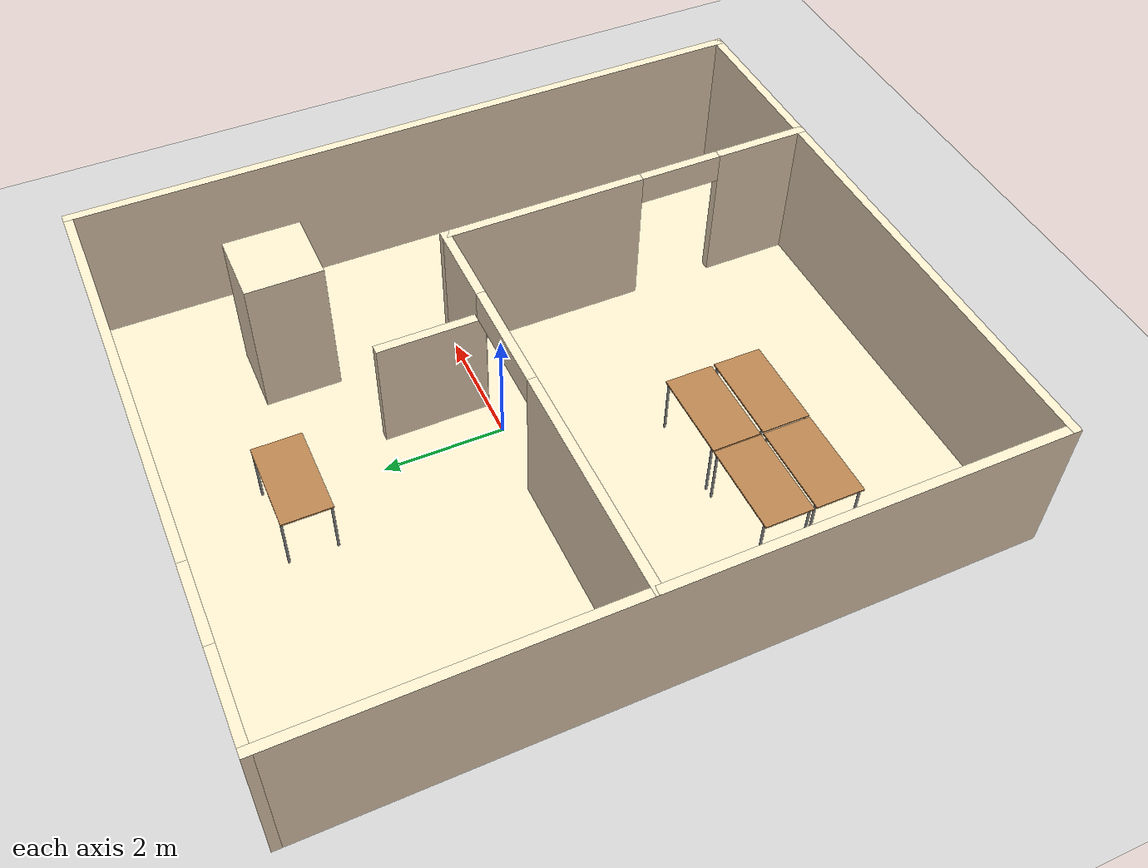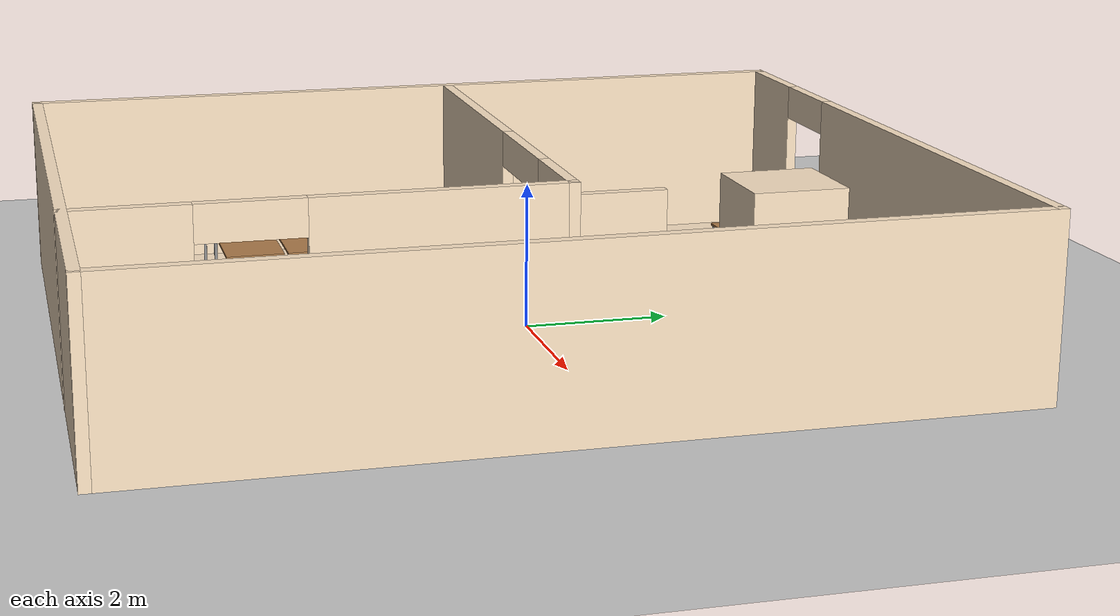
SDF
<sdf version="1.7">
 <world name="default">
  <light name="sun" type="directional">
   <pose>0 0 10 0 -0 0</pose>
   <diffuse>0.8 0.8 0.8 1</diffuse>
   <specular>0.2 0.2 0.2 1</specular>
   <attenuation>
    <range>1000</range>
    <constant>0.9</constant>
    <linear>0.01</linear>
    <quadratic>0.001</quadratic>
   </attenuation>
   <direction>-0.5 0.1 -0.9</direction>
   <spot><inner_angle>0</inner_angle><outer_angle>0</outer_angle><falloff>0</falloff></spot>
  </light>
  <model name="ground_plane">
   <static>1</static>
   <link name="link">
    <collision name="collision">
     <geometry><plane><normal>0 0 1</normal><size>100 100</size></plane></geometry>
     <surface>
      <contact><collide_bitmask>65535</collide_bitmask></contact>
      <friction><ode><mu>100</mu><mu2>50</mu2></ode></friction>
     </surface>
    </collision>
    <visual name="visual">
     <cast_shadows>0</cast_shadows>
     <geometry><plane><normal>0 0 1</normal><size>100 100</size></plane></geometry>
     <material>
      <script><uri>file://media/materials/scripts/gazebo.material</uri><name>Gazebo/Grey</name></script>
     </material>
    </visual>
   </link>
  </model>
  <gravity>0 0 -9.8</gravity>
  <magnetic_field>6e-06 2.3e-05 -4.2e-05</magnetic_field>
  <atmosphere type="adiabatic"/>
  <physics type="ode">
   <max_step_size>0.001</max_step_size>
   <real_time_factor>1</real_time_factor>
   <real_time_update_rate>1000</real_time_update_rate>
  </physics>
  <scene><ambient>0.4 0.4 0.4 1</ambient><background>0.7 0.7 0.7 1</background><shadows>1</shadows></scene>
  <audio><device>default</device></audio>
  <spherical_coordinates>
   <surface_model>EARTH_WGS84</surface_model>
   <latitude_deg>0</latitude_deg>
   <longitude_deg>0</longitude_deg>
   <elevation>0</elevation>
   <heading_deg>0</heading_deg>
  </spherical_coordinates>
  <model name="wall">
   <pose>-0.13336 -0.499026 0 0 -0 0</pose>
   <link name="floor">
    <collision name="floor_collision">
     <geometry><box><size>10 11.75 0.001</size></box></geometry>
     <pose>0 0.002085 0 0 -0 0</pose>
    </collision>
    <visual name="floor_visual">
     <geometry><box><size>10 11.75 0.001</size></box></geometry>
     <material>
      <script><uri>file://media/materials/scripts/gazebo.material</uri><name>Gazebo/Grey</name></script>
      <ambient>1 0.901961 0.780392 1</ambient>
     </material>
     <pose>0 0.002085 0 0 -0 0</pose>
    </visual>
   </link>
   <link name="Wall_11">
    <collision name="Wall_11_Collision">
     <geometry><box><size>11.75 0.15 2.5</size></box></geometry>
     <pose>0 0 1.25 0 -0 0</pose>
    </collision>
    <visual name="Wall_11_Visual">
     <pose>0 0 1.25 0 -0 0</pose>
     <geometry><box><size>11.75 0.15 2.5</size></box></geometry>
     <material>
      <script><uri>file://media/materials/scripts/gazebo.material</uri><name>Gazebo/Grey</name></script>
      <ambient>1 0.901961 0.780392 1</ambient>
     </material>
     <meta><layer>0</layer></meta>
    </visual>
    <pose>-4.9383 0.002085 0 0 -0 -1.5708</pose>
   </link>
   <link name="Wall_13">
    <collision name="Wall_13_Collision">
     <geometry><box><size>11.75 0.15 2.5</size></box></geometry>
     <pose>0 0 1.25 0 -0 0</pose>
    </collision>
    <visual name="Wall_13_Visual">
     <pose>0 0 1.25 0 -0 0</pose>
     <geometry><box><size>11.75 0.15 2.5</size></box></geometry>
     <material>
      <script><uri>file://media/materials/scripts/gazebo.material</uri><name>Gazebo/Grey</name></script>
      <ambient>1 0.901961 0.780392 1</ambient>
     </material>
     <meta><layer>0</layer></meta>
    </visual>
    <pose>4.9383 0.002085 0 0 -0 -1.5708</pose>
   </link>
   <link name="Wall_17">
    <collision name="Wall_17_Collision">
     <geometry><box><size>10.0266 0.15 2.5</size></box></geometry>
     <pose>0 0 1.25 0 -0 0</pose>
    </collision>
    <visual name="Wall_17_Visual">
     <pose>0 0 1.25 0 -0 0</pose>
     <geometry><box><size>10.0266 0.15 2.5</size></box></geometry>
     <material>
      <script><uri>file://media/materials/scripts/gazebo.material</uri><name>Gazebo/Grey</name></script>
      <ambient>1 0.901961 0.780392 1</ambient>
     </material>
     <meta><layer>0</layer></meta>
    </visual>
    <pose>0 -5.79791 0 0 -0 0</pose>
   </link>
   <link name="Wall_25">
    <pose>2.1642 -2.62709 0 0 -0 1.5708</pose>
    <visual name="Wall_25_Visual_0">
     <pose>-2.43405 0 1.25 0 -0 0</pose>
     <geometry><box><size>1.63191 0.15 2.5</size></box></geometry>
     <material>
      <script><uri>file://media/materials/scripts/gazebo.material</uri><name>Gazebo/Grey</name></script>
      <ambient>1 0.901961 0.780392 1</ambient>
     </material>
     <meta><layer>0</layer></meta>
    </visual>
    <collision name="Wall_25_Collision_0">
     <geometry><box><size>1.63191 0.15 2.5</size></box></geometry>
     <pose>-2.43405 0 1.25 0 -0 0</pose>
    </collision>
    <visual name="Wall_25_Visual_1">
     <pose>1.5188 0 1.25 0 -0 0</pose>
     <geometry><box><size>3.4624 0.15 2.5</size></box></geometry>
     <material>
      <script><uri>file://media/materials/scripts/gazebo.material</uri><name>Gazebo/Grey</name></script>
      <ambient>1 0.901961 0.780392 1</ambient>
     </material>
     <meta><layer>0</layer></meta>
    </visual>
    <collision name="Wall_25_Collision_1">
     <geometry><box><size>3.4624 0.15 2.5</size></box></geometry>
     <pose>1.5188 0 1.25 0 -0 0</pose>
    </collision>
    <visual name="Wall_25_Visual_2">
     <pose>-0.915247 0 2.25 0 -0 0</pose>
     <geometry><box><size>1.40569 0.15 0.5</size></box></geometry>
     <material>
      <script><uri>file://media/materials/scripts/gazebo.material</uri><name>Gazebo/Grey</name></script>
      <ambient>1 0.901961 0.780392 1</ambient>
     </material>
     <meta><layer>0</layer></meta>
    </visual>
    <collision name="Wall_25_Collision_2">
     <geometry><box><size>1.40569 0.15 0.5</size></box></geometry>
     <pose>-0.915247 0 2.25 0 -0 0</pose>
    </collision>
   </link>
   <link name="Wall_26">
    <pose>-1.3858 0.547915 0 0 -0 3.14159</pose>
    <visual name="Wall_26_Visual_0">
     <pose>-2.88936 0 1.25 0 -0 0</pose>
     <geometry><box><size>1.47128 0.15 2.5</size></box></geometry>
     <material>
      <script><uri>file://media/materials/scripts/gazebo.material</uri><name>Gazebo/Grey</name></script>
      <ambient>1 0.901961 0.780392 1</ambient>
     </material>
     <meta><layer>0</layer></meta>
    </visual>
    <collision name="Wall_26_Collision_0">
     <geometry><box><size>1.47128 0.15 2.5</size></box></geometry>
     <pose>-2.88936 0 1.25 0 -0 0</pose>
    </collision>
    <visual name="Wall_26_Visual_1">
     <pose>1.67111 0 1.25 0 -0 0</pose>
     <geometry><box><size>3.90779 0.15 2.5</size></box></geometry>
     <material>
      <script><uri>file://media/materials/scripts/gazebo.material</uri><name>Gazebo/Grey</name></script>
      <ambient>1 0.901961 0.780392 1</ambient>
     </material>
     <meta><layer>0</layer></meta>
    </visual>
    <collision name="Wall_26_Collision_1">
     <geometry><box><size>3.90779 0.15 2.5</size></box></geometry>
     <pose>1.67111 0 1.25 0 -0 0</pose>
    </collision>
    <visual name="Wall_26_Visual_2">
     <pose>-1.21826 0 2.25 0 -0 0</pose>
     <geometry><box><size>1.87093 0.15 0.5</size></box></geometry>
     <material>
      <script><uri>file://media/materials/scripts/gazebo.material</uri><name>Gazebo/Grey</name></script>
      <ambient>1 0.901961 0.780392 1</ambient>
     </material>
     <meta><layer>0</layer></meta>
    </visual>
    <collision name="Wall_26_Collision_2">
     <geometry><box><size>1.87093 0.15 0.5</size></box></geometry>
     <pose>-1.21826 0 2.25 0 -0 0</pose>
    </collision>
   </link>
   <link name="Wall_28">
    <collision name="Wall_28_Collision">
     <geometry><box><size>1.75 0.15 2</size></box></geometry>
     <pose>0 0 1 0 -0 0</pose>
    </collision>
    <visual name="Wall_28_Visual">
     <pose>0 0 1 0 -0 0</pose>
     <geometry><box><size>1.75 0.15 2</size></box></geometry>
     <material>
      <script><uri>file://media/materials/scripts/gazebo.material</uri><name>Gazebo/Grey</name></script>
      <ambient>1 0.901961 0.780392 1</ambient>
     </material>
     <meta><layer>0</layer></meta>
    </visual>
    <pose>0.773042 1.3838 0 0 -0 1.5708</pose>
   </link>
   <link name="Wall_32">
    <collision name="Wall_32_Collision">
     <geometry><box><size>1.25 1.2 2.5</size></box></geometry>
     <pose>0 0 1.25 0 -0 0</pose>
    </collision>
    <visual name="Wall_32_Visual">
     <pose>0 0 1.25 0 -0 0</pose>
     <geometry><box><size>1.25 1.2 2.5</size></box></geometry>
     <material>
      <script><uri>file://media/materials/scripts/gazebo.material</uri><name>Gazebo/Grey</name></script>
      <ambient>1 0.901961 0.780392 1</ambient>
     </material>
     <meta><layer>0</layer></meta>
    </visual>
    <pose>2.76597 3.13644 0 0 -0 -1.5708</pose>
   </link>
   <link name="Wall_9">
    <pose>0 5.80208 0 0 -0 0</pose>
    <visual name="Wall_9_Visual_0">
     <pose>-4.22153 0 1.25 0 -0 0</pose>
     <geometry><box><size>1.58354 0.15 2.5</size></box></geometry>
     <material>
      <script><uri>file://media/materials/scripts/gazebo.material</uri><name>Gazebo/Grey</name></script>
      <ambient>1 0.901961 0.780392 1</ambient>
     </material>
     <meta><layer>0</layer></meta>
    </visual>
    <collision name="Wall_9_Collision_0">
     <geometry><box><size>1.58354 0.15 2.5</size></box></geometry>
     <pose>-4.22153 0 1.25 0 -0 0</pose>
    </collision>
    <visual name="Wall_9_Visual_1">
     <pose>1.44405 0 1.25 0 -0 0</pose>
     <geometry><box><size>7.13851 0.15 2.5</size></box></geometry>
     <material>
      <script><uri>file://media/materials/scripts/gazebo.material</uri><name>Gazebo/Grey</name></script>
      <ambient>1 0.901961 0.780392 1</ambient>
     </material>
     <meta><layer>0</layer></meta>
    </visual>
    <collision name="Wall_9_Collision_1">
     <geometry><box><size>7.13851 0.15 2.5</size></box></geometry>
     <pose>1.44405 0 1.25 0 -0 0</pose>
    </collision>
    <visual name="Wall_9_Visual_2">
     <pose>-2.77748 0 2.25 0 -0 0</pose>
     <geometry><box><size>1.30456 0.15 0.5</size></box></geometry>
     <material>
      <script><uri>file://media/materials/scripts/gazebo.material</uri><name>Gazebo/Grey</name></script>
      <ambient>1 0.901961 0.780392 1</ambient>
     </material>
     <meta><layer>0</layer></meta>
    </visual>
    <collision name="Wall_9_Collision_2">
     <geometry><box><size>1.30456 0.15 0.5</size></box></geometry>
     <pose>-2.77748 0 2.25 0 -0 0</pose>
    </collision>
   </link>
   <static>1</static>
  </model>
  <model name="Table">
   <static>1</static>
   <link name="link">
    <collision name="surface">
     <pose>0 0 1 0 -0 0</pose>
     <geometry><box><size>1.5 0.8 0.03</size></box></geometry>
     <surface><friction><ode><mu>0.6</mu><mu2>0.6</mu2></ode></friction></surface>
    </collision>
    <visual name="visual1">
     <pose>0 0 1 0 -0 0</pose>
     <geometry><box><size>1.5 0.8 0.03</size></box></geometry>
     <material>
      <diffuse>1 1 1 1</diffuse>
      <script><uri>file://media/materials/scripts/gazebo.material</uri><name>Gazebo/Wood</name></script>
      <pbr><metal><albedo_map>model://Table/Table_Diffuse.jpg</albedo_map></metal></pbr>
     </material>
    </visual>
    <collision name="front_left_leg">
     <pose>0.68 0.38 0.5 0 -0 0</pose>
     <geometry><cylinder><radius>0.02</radius><length>1</length></cylinder></geometry>
    </collision>
    <visual name="front_left_leg">
     <pose>0.68 0.38 0.5 0 -0 0</pose>
     <geometry><cylinder><radius>0.02</radius><length>1</length></cylinder></geometry>
     <material>
      <diffuse>0.5 0.5 0.5 1</diffuse>
      <script><uri>file://media/materials/scripts/gazebo.material</uri><name>Gazebo/Grey</name></script>
     </material>
    </visual>
    <collision name="front_right_leg">
     <pose>0.68 -0.38 0.5 0 -0 0</pose>
     <geometry><cylinder><radius>0.02</radius><length>1</length></cylinder></geometry>
    </collision>
    <visual name="front_right_leg">
     <pose>0.68 -0.38 0.5 0 -0 0</pose>
     <geometry><cylinder><radius>0.02</radius><length>1</length></cylinder></geometry>
     <material>
      <diffuse>0.5 0.5 0.5 1</diffuse>
      <script><uri>file://media/materials/scripts/gazebo.material</uri><name>Gazebo/Grey</name></script>
     </material>
    </visual>
    <collision name="back_right_leg">
     <pose>-0.68 -0.38 0.5 0 -0 0</pose>
     <geometry><cylinder><radius>0.02</radius><length>1</length></cylinder></geometry>
    </collision>
    <visual name="back_right_leg">
     <pose>-0.68 -0.38 0.5 0 -0 0</pose>
     <geometry><cylinder><radius>0.02</radius><length>1</length></cylinder></geometry>
     <material>
      <diffuse>0.5 0.5 0.5 1</diffuse>
      <script><uri>file://media/materials/scripts/gazebo.material</uri><name>Gazebo/Grey</name></script>
     </material>
    </visual>
    <collision name="back_left_leg">
     <pose>-0.68 0.38 0.5 0 -0 0</pose>
     <geometry><cylinder><radius>0.02</radius><length>1</length></cylinder></geometry>
    </collision>
    <visual name="back_left_leg">
     <pose>-0.68 0.38 0.5 0 -0 0</pose>
     <geometry><cylinder><radius>0.02</radius><length>1</length></cylinder></geometry>
     <material>
      <diffuse>0.5 0.5 0.5 1</diffuse>
      <script><uri>file://media/materials/scripts/gazebo.material</uri><name>Gazebo/Grey</name></script>
     </material>
    </visual>
   </link>
   <pose>-3.19292 -2.74785 0 0 -0 0</pose>
  </model>
  <model name="Table_0">
   <static>1</static>
   <link name="link">
    <collision name="surface">
     <pose>0 0 1 0 -0 0</pose>
     <geometry><box><size>1.5 0.8 0.03</size></box></geometry>
     <surface><friction><ode><mu>0.6</mu><mu2>0.6</mu2></ode></friction></surface>
    </collision>
    <visual name="visual1">
     <pose>0 0 1 0 -0 0</pose>
     <geometry><box><size>1.5 0.8 0.03</size></box></geometry>
     <material>
      <diffuse>1 1 1 1</diffuse>
      <script><uri>file://media/materials/scripts/gazebo.material</uri><name>Gazebo/Wood</name></script>
      <pbr><metal><albedo_map>model://Table/Table_Diffuse.jpg</albedo_map></metal></pbr>
     </material>
    </visual>
    <collision name="front_left_leg">
     <pose>0.68 0.38 0.5 0 -0 0</pose>
     <geometry><cylinder><radius>0.02</radius><length>1</length></cylinder></geometry>
    </collision>
    <visual name="front_left_leg">
     <pose>0.68 0.38 0.5 0 -0 0</pose>
     <geometry><cylinder><radius>0.02</radius><length>1</length></cylinder></geometry>
     <material>
      <diffuse>0.5 0.5 0.5 1</diffuse>
      <script><uri>file://media/materials/scripts/gazebo.material</uri><name>Gazebo/Grey</name></script>
     </material>
    </visual>
    <collision name="front_right_leg">
     <pose>0.68 -0.38 0.5 0 -0 0</pose>
     <geometry><cylinder><radius>0.02</radius><length>1</length></cylinder></geometry>
    </collision>
    <visual name="front_right_leg">
     <pose>0.68 -0.38 0.5 0 -0 0</pose>
     <geometry><cylinder><radius>0.02</radius><length>1</length></cylinder></geometry>
     <material>
      <diffuse>0.5 0.5 0.5 1</diffuse>
      <script><uri>file://media/materials/scripts/gazebo.material</uri><name>Gazebo/Grey</name></script>
     </material>
    </visual>
    <collision name="back_right_leg">
     <pose>-0.68 -0.38 0.5 0 -0 0</pose>
     <geometry><cylinder><radius>0.02</radius><length>1</length></cylinder></geometry>
    </collision>
    <visual name="back_right_leg">
     <pose>-0.68 -0.38 0.5 0 -0 0</pose>
     <geometry><cylinder><radius>0.02</radius><length>1</length></cylinder></geometry>
     <material>
      <diffuse>0.5 0.5 0.5 1</diffuse>
      <script><uri>file://media/materials/scripts/gazebo.material</uri><name>Gazebo/Grey</name></script>
     </material>
    </visual>
    <collision name="back_left_leg">
     <pose>-0.68 0.38 0.5 0 -0 0</pose>
     <geometry><cylinder><radius>0.02</radius><length>1</length></cylinder></geometry>
    </collision>
    <visual name="back_left_leg">
     <pose>-0.68 0.38 0.5 0 -0 0</pose>
     <geometry><cylinder><radius>0.02</radius><length>1</length></cylinder></geometry>
     <material>
      <diffuse>0.5 0.5 0.5 1</diffuse>
      <script><uri>file://media/materials/scripts/gazebo.material</uri><name>Gazebo/Grey</name></script>
     </material>
    </visual>
   </link>
   <pose>-1.67242 -2.74931 0 0 -0 0</pose>
  </model>
  <model name="Table_1">
   <static>1</static>
   <link name="link">
    <collision name="surface">
     <pose>0 0 1 0 -0 0</pose>
     <geometry><box><size>1.5 0.8 0.03</size></box></geometry>
     <surface><friction><ode><mu>0.6</mu><mu2>0.6</mu2></ode></friction></surface>
    </collision>
    <visual name="visual1">
     <pose>0 0 1 0 -0 0</pose>
     <geometry><box><size>1.5 0.8 0.03</size></box></geometry>
     <material>
      <diffuse>1 1 1 1</diffuse>
      <script><uri>file://media/materials/scripts/gazebo.material</uri><name>Gazebo/Wood</name></script>
      <pbr><metal><albedo_map>model://Table/Table_Diffuse.jpg</albedo_map></metal></pbr>
     </material>
    </visual>
    <collision name="front_left_leg">
     <pose>0.68 0.38 0.5 0 -0 0</pose>
     <geometry><cylinder><radius>0.02</radius><length>1</length></cylinder></geometry>
    </collision>
    <visual name="front_left_leg">
     <pose>0.68 0.38 0.5 0 -0 0</pose>
     <geometry><cylinder><radius>0.02</radius><length>1</length></cylinder></geometry>
     <material>
      <diffuse>0.5 0.5 0.5 1</diffuse>
      <script><uri>file://media/materials/scripts/gazebo.material</uri><name>Gazebo/Grey</name></script>
     </material>
    </visual>
    <collision name="front_right_leg">
     <pose>0.68 -0.38 0.5 0 -0 0</pose>
     <geometry><cylinder><radius>0.02</radius><length>1</length></cylinder></geometry>
    </collision>
    <visual name="front_right_leg">
     <pose>0.68 -0.38 0.5 0 -0 0</pose>
     <geometry><cylinder><radius>0.02</radius><length>1</length></cylinder></geometry>
     <material>
      <diffuse>0.5 0.5 0.5 1</diffuse>
      <script><uri>file://media/materials/scripts/gazebo.material</uri><name>Gazebo/Grey</name></script>
     </material>
    </visual>
    <collision name="back_right_leg">
     <pose>-0.68 -0.38 0.5 0 -0 0</pose>
     <geometry><cylinder><radius>0.02</radius><length>1</length></cylinder></geometry>
    </collision>
    <visual name="back_right_leg">
     <pose>-0.68 -0.38 0.5 0 -0 0</pose>
     <geometry><cylinder><radius>0.02</radius><length>1</length></cylinder></geometry>
     <material>
      <diffuse>0.5 0.5 0.5 1</diffuse>
      <script><uri>file://media/materials/scripts/gazebo.material</uri><name>Gazebo/Grey</name></script>
     </material>
    </visual>
    <collision name="back_left_leg">
     <pose>-0.68 0.38 0.5 0 -0 0</pose>
     <geometry><cylinder><radius>0.02</radius><length>1</length></cylinder></geometry>
    </collision>
    <visual name="back_left_leg">
     <pose>-0.68 0.38 0.5 0 -0 0</pose>
     <geometry><cylinder><radius>0.02</radius><length>1</length></cylinder></geometry>
     <material>
      <diffuse>0.5 0.5 0.5 1</diffuse>
      <script><uri>file://media/materials/scripts/gazebo.material</uri><name>Gazebo/Grey</name></script>
     </material>
    </visual>
   </link>
   <pose>-3.18949 -3.59094 0 0 -0 0</pose>
  </model>
  <model name="Table_2">
   <static>1</static>
   <link name="link">
    <collision name="surface">
     <pose>0 0 1 0 -0 0</pose>
     <geometry><box><size>1.5 0.8 0.03</size></box></geometry>
     <surface><friction><ode><mu>0.6</mu><mu2>0.6</mu2></ode></friction></surface>
    </collision>
    <visual name="visual1">
     <pose>0 0 1 0 -0 0</pose>
     <geometry><box><size>1.5 0.8 0.03</size></box></geometry>
     <material>
      <diffuse>1 1 1 1</diffuse>
      <script><uri>file://media/materials/scripts/gazebo.material</uri><name>Gazebo/Wood</name></script>
      <pbr><metal><albedo_map>model://Table/Table_Diffuse.jpg</albedo_map></metal></pbr>
     </material>
    </visual>
    <collision name="front_left_leg">
     <pose>0.68 0.38 0.5 0 -0 0</pose>
     <geometry><cylinder><radius>0.02</radius><length>1</length></cylinder></geometry>
    </collision>
    <visual name="front_left_leg">
     <pose>0.68 0.38 0.5 0 -0 0</pose>
     <geometry><cylinder><radius>0.02</radius><length>1</length></cylinder></geometry>
     <material>
      <diffuse>0.5 0.5 0.5 1</diffuse>
      <script><uri>file://media/materials/scripts/gazebo.material</uri><name>Gazebo/Grey</name></script>
     </material>
    </visual>
    <collision name="front_right_leg">
     <pose>0.68 -0.38 0.5 0 -0 0</pose>
     <geometry><cylinder><radius>0.02</radius><length>1</length></cylinder></geometry>
    </collision>
    <visual name="front_right_leg">
     <pose>0.68 -0.38 0.5 0 -0 0</pose>
     <geometry><cylinder><radius>0.02</radius><length>1</length></cylinder></geometry>
     <material>
      <diffuse>0.5 0.5 0.5 1</diffuse>
      <script><uri>file://media/materials/scripts/gazebo.material</uri><name>Gazebo/Grey</name></script>
     </material>
    </visual>
    <collision name="back_right_leg">
     <pose>-0.68 -0.38 0.5 0 -0 0</pose>
     <geometry><cylinder><radius>0.02</radius><length>1</length></cylinder></geometry>
    </collision>
    <visual name="back_right_leg">
     <pose>-0.68 -0.38 0.5 0 -0 0</pose>
     <geometry><cylinder><radius>0.02</radius><length>1</length></cylinder></geometry>
     <material>
      <diffuse>0.5 0.5 0.5 1</diffuse>
      <script><uri>file://media/materials/scripts/gazebo.material</uri><name>Gazebo/Grey</name></script>
     </material>
    </visual>
    <collision name="back_left_leg">
     <pose>-0.68 0.38 0.5 0 -0 0</pose>
     <geometry><cylinder><radius>0.02</radius><length>1</length></cylinder></geometry>
    </collision>
    <visual name="back_left_leg">
     <pose>-0.68 0.38 0.5 0 -0 0</pose>
     <geometry><cylinder><radius>0.02</radius><length>1</length></cylinder></geometry>
     <material>
      <diffuse>0.5 0.5 0.5 1</diffuse>
      <script><uri>file://media/materials/scripts/gazebo.material</uri><name>Gazebo/Grey</name></script>
     </material>
    </visual>
   </link>
   <pose>-1.66101 -3.60346 0 0 -0 0</pose>
  </model>
  <model name="Table_3">
   <static>1</static>
   <link name="link">
    <collision name="surface">
     <pose>0 0 1 0 -0 0</pose>
     <geometry><box><size>1.5 0.8 0.03</size></box></geometry>
     <surface><friction><ode><mu>0.6</mu><mu2>0.6</mu2></ode></friction></surface>
    </collision>
    <visual name="visual1">
     <pose>0 0 1 0 -0 0</pose>
     <geometry><box><size>1.5 0.8 0.03</size></box></geometry>
     <material>
      <diffuse>1 1 1 1</diffuse>
      <script><uri>file://media/materials/scripts/gazebo.material</uri><name>Gazebo/Wood</name></script>
      <pbr><metal><albedo_map>model://Table/Table_Diffuse.jpg</albedo_map></metal></pbr>
     </material>
    </visual>
    <collision name="front_left_leg">
     <pose>0.68 0.38 0.5 0 -0 0</pose>
     <geometry><cylinder><radius>0.02</radius><length>1</length></cylinder></geometry>
    </collision>
    <visual name="front_left_leg">
     <pose>0.68 0.38 0.5 0 -0 0</pose>
     <geometry><cylinder><radius>0.02</radius><length>1</length></cylinder></geometry>
     <material>
      <diffuse>0.5 0.5 0.5 1</diffuse>
      <script><uri>file://media/materials/scripts/gazebo.material</uri><name>Gazebo/Grey</name></script>
     </material>
    </visual>
    <collision name="front_right_leg">
     <pose>0.68 -0.38 0.5 0 -0 0</pose>
     <geometry><cylinder><radius>0.02</radius><length>1</length></cylinder></geometry>
    </collision>
    <visual name="front_right_leg">
     <pose>0.68 -0.38 0.5 0 -0 0</pose>
     <geometry><cylinder><radius>0.02</radius><length>1</length></cylinder></geometry>
     <material>
      <diffuse>0.5 0.5 0.5 1</diffuse>
      <script><uri>file://media/materials/scripts/gazebo.material</uri><name>Gazebo/Grey</name></script>
     </material>
    </visual>
    <collision name="back_right_leg">
     <pose>-0.68 -0.38 0.5 0 -0 0</pose>
     <geometry><cylinder><radius>0.02</radius><length>1</length></cylinder></geometry>
    </collision>
    <visual name="back_right_leg">
     <pose>-0.68 -0.38 0.5 0 -0 0</pose>
     <geometry><cylinder><radius>0.02</radius><length>1</length></cylinder></geometry>
     <material>
      <diffuse>0.5 0.5 0.5 1</diffuse>
      <script><uri>file://media/materials/scripts/gazebo.material</uri><name>Gazebo/Grey</name></script>
     </material>
    </visual>
    <collision name="back_left_leg">
     <pose>-0.68 0.38 0.5 0 -0 0</pose>
     <geometry><cylinder><radius>0.02</radius><length>1</length></cylinder></geometry>
    </collision>
    <visual name="back_left_leg">
     <pose>-0.68 0.38 0.5 0 -0 0</pose>
     <geometry><cylinder><radius>0.02</radius><length>1</length></cylinder></geometry>
     <material>
      <diffuse>0.5 0.5 0.5 1</diffuse>
      <script><uri>file://media/materials/scripts/gazebo.material</uri><name>Gazebo/Grey</name></script>
     </material>
    </visual>
   </link>
   <pose>-0.362563 3.47666 0 0 -0 0</pose>
  </model>
 </world>
</sdf>
